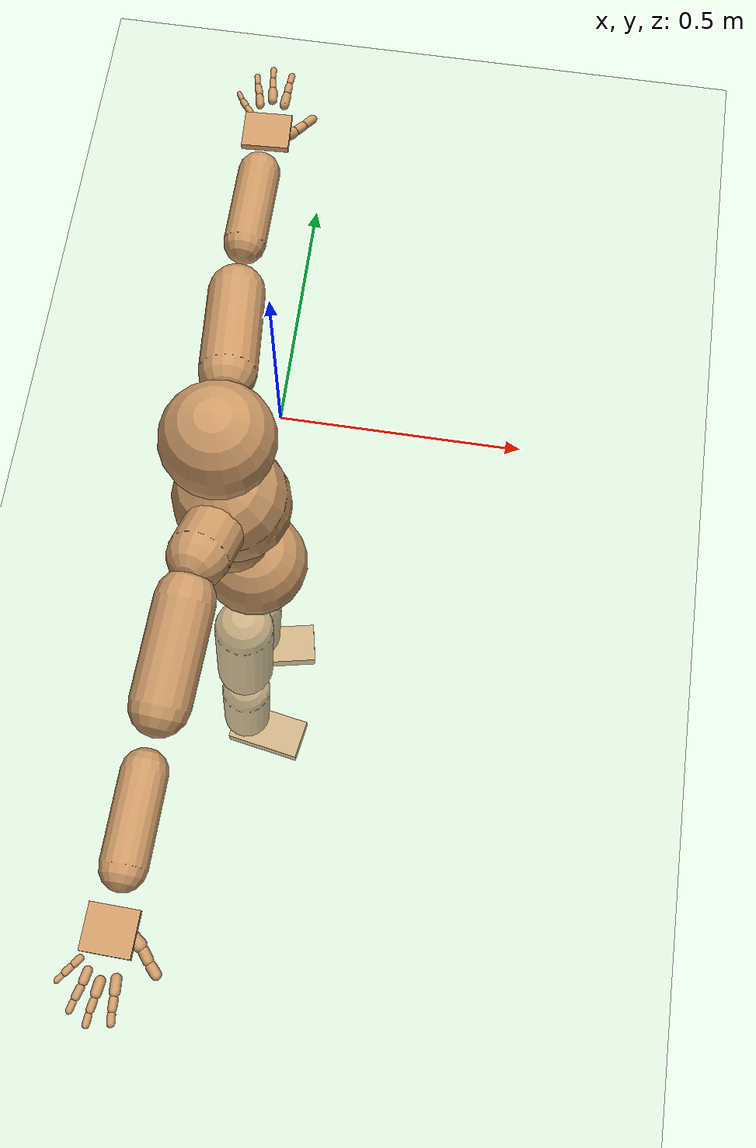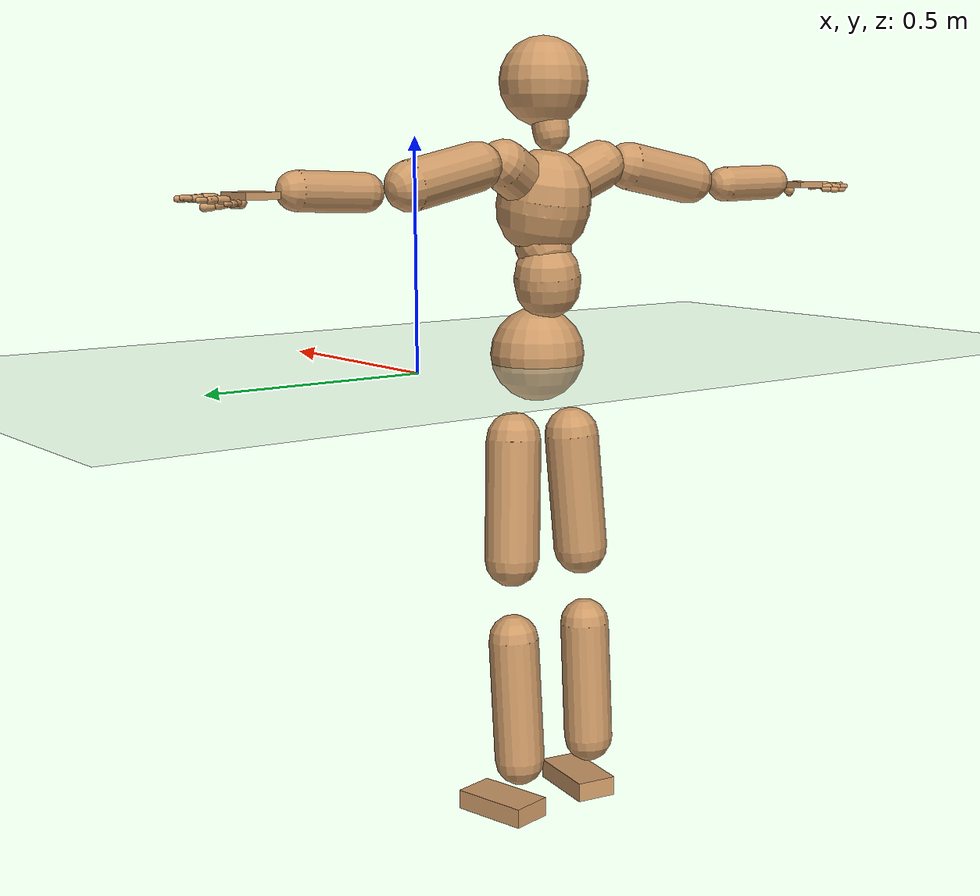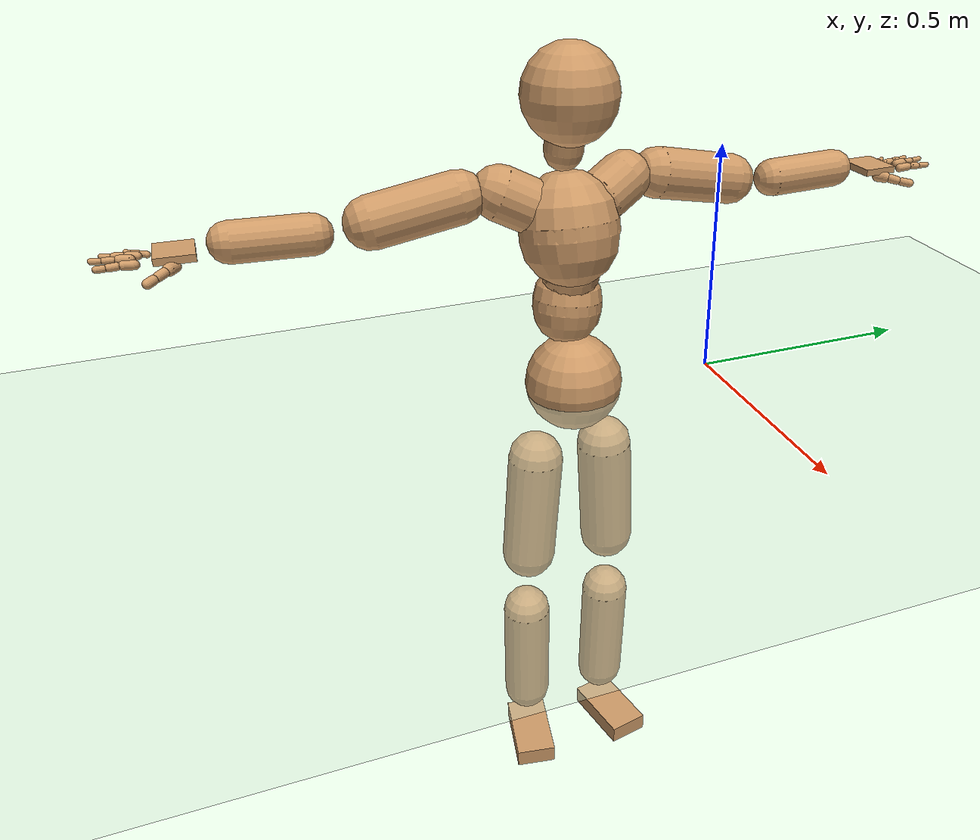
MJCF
<mujoco model="humanoid">
  <compiler coordinate="local" angle="radian"/>
  <default>
    <joint damping="0.0" armature="0.01" stiffness="0.0" limited="true"/>
    <geom conaffinity="1" condim="3" contype="7" margin="0.001" rgba="0.8 0.6 .4 1"/>
  </default>
  <asset>
    <texture type="skybox" builtin="gradient" rgb1=".4 .5 .6" rgb2="0 0 0" width="100" height="100"/>
    <texture builtin="flat" height="1278" mark="cross" markrgb="1 1 1" name="texgeom" random="0.01" rgb1="0.8 0.6 0.4" rgb2="0.8 0.6 0.4" type="cube" width="127"/>
    <texture builtin="checker" height="100" name="texplane" rgb1="0 0 0" rgb2="0.8 0.8 0.8" type="2d" width="100"/>
    <material name="MatPlane" reflectance="0.5" shininess="1" specular="1" texrepeat="60 60" texture="texplane"/>
    <material name="geom" texture="texgeom" texuniform="true"/>
  </asset>
  <worldbody>
    <light cutoff="100" diffuse="1 1 1" dir="-0 0 -1.3" directional="true" exponent="1" pos="0 0 1.3" specular=".1 .1 .1"/>
    <geom conaffinity="1" condim="3" name="floor" pos="0 0 0" rgba="0.8 0.9 0.8 1" size="100 100 .2" type="plane" material="MatPlane"/>
    <body name="Pelvis" pos="0.0007 -0.3256 0.0179">
      <freejoint name="Pelvis"/>
      <geom type="sphere" contype="1" conaffinity="1" density="500" size="0.1062" pos="0.0000 0.0000 0.0000" name="Pelvis"/>
      <body name="L_Hip" pos="-0.0147 0.078 -0.0942">
        <joint name="L_Hip_x" type="hinge" pos="0 0 0" axis="1 0 0" stiffness="800" damping="80" armature="0.02" range="-180.0000 180.0000"/>
        <joint name="L_Hip_y" type="hinge" pos="0 0 0" axis="0 1 0" stiffness="800" damping="80" armature="0.02" range="-180.0000 180.0000"/>
        <joint name="L_Hip_z" type="hinge" pos="0 0 0" axis="0 0 1" stiffness="800" damping="80" armature="0.02" range="-180.0000 180.0000"/>
        <geom type="capsule" contype="1" conaffinity="1" density="500" fromto="-0.0049 0.0055 -0.0903 -0.0198 0.0222 -0.3613" size="0.062" name="L_Hip"/>
        <body name="L_Knee" pos="-0.0247 0.0277 -0.4516">
          <joint name="L_Knee_x" type="hinge" pos="0 0 0" axis="1 0 0" stiffness="800" damping="80" armature="0.02" range="-180.0000 180.0000"/>
          <joint name="L_Knee_y" type="hinge" pos="0 0 0" axis="0 1 0" stiffness="800" damping="80" armature="0.02" range="-180.0000 180.0000"/>
          <joint name="L_Knee_z" type="hinge" pos="0 0 0" axis="0 0 1" stiffness="800" damping="80" armature="0.02" range="-180.0000 180.0000"/>
          <geom type="capsule" contype="1" conaffinity="1" density="500" fromto="-0.0058 -0.0010 -0.0941 -0.0230 -0.0040 -0.3763" size="0.0567" name="L_Knee"/>
          <body name="L_Ankle" pos="-0.0288 -0.005 -0.4704">
            <joint name="L_Ankle_x" type="hinge" pos="0 0 0" axis="1 0 0" stiffness="800" damping="80" armature="0.02" range="-180.0000 180.0000"/>
            <joint name="L_Ankle_y" type="hinge" pos="0 0 0" axis="0 1 0" stiffness="800" damping="80" armature="0.02" range="-180.0000 180.0000"/>
            <joint name="L_Ankle_z" type="hinge" pos="0 0 0" axis="0 0 1" stiffness="800" damping="80" armature="0.02" range="-180.0000 180.0000"/>
            <geom type="box" contype="1" conaffinity="1" density="500" pos="0.0581 0.0118 -0.0256" size="0.0908 0.0478 0.0221" quat="0.9950 0.0000 0.0000 0.0996" name="L_Ankle"/>
            <body name="L_Toe" pos="0.1162 0.0235 -0.0513">
              <joint name="L_Toe_x" type="hinge" pos="0 0 0" axis="1 0 0" stiffness="500" damping="50" armature="0.02" range="-180.0000 180.0000"/>
              <joint name="L_Toe_y" type="hinge" pos="0 0 0" axis="0 1 0" stiffness="500" damping="50" armature="0.02" range="-180.0000 180.0000"/>
              <joint name="L_Toe_z" type="hinge" pos="0 0 0" axis="0 0 1" stiffness="500" damping="50" armature="0.02" range="-180.0000 180.0000"/>
              <geom type="box" contype="1" conaffinity="1" density="500" pos="0.0000 0.0000 0.0244" size="0.0009 0.0023 0.001" quat="0.9944 0.0000 0.0000 0.1061" name="L_Toe"/>
            </body>
          </body>
        </body>
      </body>
      <body name="R_Hip" pos="-0.0163 -0.0779 -0.1006">
        <joint name="R_Hip_x" type="hinge" pos="0 0 0" axis="1 0 0" stiffness="800" damping="80" armature="0.02" range="-180.0000 180.0000"/>
        <joint name="R_Hip_y" type="hinge" pos="0 0 0" axis="0 1 0" stiffness="800" damping="80" armature="0.02" range="-180.0000 180.0000"/>
        <joint name="R_Hip_z" type="hinge" pos="0 0 0" axis="0 0 1" stiffness="800" damping="80" armature="0.02" range="-180.0000 180.0000"/>
        <geom type="capsule" contype="1" conaffinity="1" density="500" fromto="-0.0036 -0.0062 -0.0896 -0.0144 -0.0250 -0.3583" size="0.0619" name="R_Hip"/>
        <body name="R_Knee" pos="-0.018 -0.0312 -0.4479">
          <joint name="R_Knee_x" type="hinge" pos="0 0 0" axis="1 0 0" stiffness="800" damping="80" armature="0.02" range="-180.0000 180.0000"/>
          <joint name="R_Knee_y" type="hinge" pos="0 0 0" axis="0 1 0" stiffness="800" damping="80" armature="0.02" range="-180.0000 180.0000"/>
          <joint name="R_Knee_z" type="hinge" pos="0 0 0" axis="0 0 1" stiffness="800" damping="80" armature="0.02" range="-180.0000 180.0000"/>
          <geom type="capsule" contype="1" conaffinity="1" density="500" fromto="-0.0051 -0.0000 -0.0922 -0.0203 -0.0001 -0.3690" size="0.0566" name="R_Knee"/>
          <body name="R_Ankle" pos="-0.0254 -0.0001 -0.4612">
            <joint name="R_Ankle_x" type="hinge" pos="0 0 0" axis="1 0 0" stiffness="800" damping="80" armature="0.02" range="-180.0000 180.0000"/>
            <joint name="R_Ankle_y" type="hinge" pos="0 0 0" axis="0 1 0" stiffness="800" damping="80" armature="0.02" range="-180.0000 180.0000"/>
            <joint name="R_Ankle_z" type="hinge" pos="0 0 0" axis="0 0 1" stiffness="800" damping="80" armature="0.02" range="-180.0000 180.0000"/>
            <geom type="box" contype="1" conaffinity="1" density="500" pos="0.0550 -0.0095 -0.0273" size="0.0908 0.0478 0.0221" quat="0.9964 0.0000 0.0000 -0.0853" name="R_Ankle"/>
            <body name="R_Toe" pos="0.1101 -0.019 -0.0547">
              <joint name="R_Toe_x" type="hinge" pos="0 0 0" axis="1 0 0" stiffness="500" damping="50" armature="0.02" range="-180.0000 180.0000"/>
              <joint name="R_Toe_y" type="hinge" pos="0 0 0" axis="0 1 0" stiffness="500" damping="50" armature="0.02" range="-180.0000 180.0000"/>
              <joint name="R_Toe_z" type="hinge" pos="0 0 0" axis="0 0 1" stiffness="500" damping="50" armature="0.02" range="-180.0000 180.0000"/>
              <geom type="box" contype="1" conaffinity="1" density="500" pos="0.0000 0.0000 0.0261" size="0.0009 0.0023 0.001" quat="0.9972 0.0000 0.0000 -0.0752" name="R_Toe"/>
            </body>
          </body>
        </body>
      </body>
      <body name="Torso" pos="-0.0304 -0.0062 0.1124">
        <joint name="Torso_x" type="hinge" pos="0 0 0" axis="1 0 0" stiffness="1000" damping="100" armature="0.02" range="-180.0000 180.0000"/>
        <joint name="Torso_y" type="hinge" pos="0 0 0" axis="0 1 0" stiffness="1000" damping="100" armature="0.02" range="-180.0000 180.0000"/>
        <joint name="Torso_z" type="hinge" pos="0 0 0" axis="0 0 1" stiffness="1000" damping="100" armature="0.02" range="-180.0000 180.0000"/>
        <geom type="capsule" contype="1" conaffinity="1" density="500" fromto="-0.0069 0.0070 0.0677 -0.0046 0.0046 0.0452" size="0.0743" name="Torso"/>
        <body name="Spine" pos="-0.0116 0.0116 0.1129">
          <joint name="Spine_x" type="hinge" pos="0 0 0" axis="1 0 0" stiffness="1000" damping="100" armature="0.02" range="-180.0000 180.0000"/>
          <joint name="Spine_y" type="hinge" pos="0 0 0" axis="0 1 0" stiffness="1000" damping="100" armature="0.02" range="-180.0000 180.0000"/>
          <joint name="Spine_z" type="hinge" pos="0 0 0" axis="0 0 1" stiffness="1000" damping="100" armature="0.02" range="-180.0000 180.0000"/>
          <geom type="capsule" contype="1" conaffinity="1" density="500" fromto="0.0222 -0.0038 0.0260 0.0148 -0.0025 0.0173" size="0.0626" name="Spine"/>
          <body name="Chest" pos="0.0369 -0.0063 0.0433">
            <joint name="Chest_x" type="hinge" pos="0 0 0" axis="1 0 0" stiffness="1000" damping="100" armature="0.02" range="-180.0000 180.0000"/>
            <joint name="Chest_y" type="hinge" pos="0 0 0" axis="0 1 0" stiffness="1000" damping="100" armature="0.02" range="-180.0000 180.0000"/>
            <joint name="Chest_z" type="hinge" pos="0 0 0" axis="0 0 1" stiffness="1000" damping="100" armature="0.02" range="-180.0000 180.0000"/>
            <geom type="capsule" contype="1" conaffinity="1" density="500" fromto="-0.0181 -0.0016 0.0844 -0.0121 -0.0011 0.0563" size="0.1048" name="Chest"/>
            <body name="Neck" pos="-0.0431 -0.006 0.195">
              <joint name="Neck_x" type="hinge" pos="0 0 0" axis="1 0 0" stiffness="500" damping="50" armature="0.02" range="-180.0000 180.0000"/>
              <joint name="Neck_y" type="hinge" pos="0 0 0" axis="0 1 0" stiffness="500" damping="50" armature="0.02" range="-180.0000 180.0000"/>
              <joint name="Neck_z" type="hinge" pos="0 0 0" axis="0 0 1" stiffness="500" damping="50" armature="0.02" range="-180.0000 180.0000"/>
              <geom type="capsule" contype="1" conaffinity="1" density="500" fromto="0.0044 0.0018 0.0277 0.0177 0.0072 0.1108" size="0.0403" name="Neck"/>
              <body name="Head" pos="0.0222 0.009 0.1385">
                <joint name="Head_x" type="hinge" pos="0 0 0" axis="1 0 0" stiffness="500" damping="50" armature="0.02" range="-180.0000 180.0000"/>
                <joint name="Head_y" type="hinge" pos="0 0 0" axis="0 1 0" stiffness="500" damping="50" armature="0.02" range="-180.0000 180.0000"/>
                <joint name="Head_z" type="hinge" pos="0 0 0" axis="0 0 1" stiffness="500" damping="50" armature="0.02" range="-180.0000 180.0000"/>
                <geom type="sphere" contype="1" conaffinity="1" density="500" size="0.0983" pos="0.0000 0.0000 0.0000" name="Head"/>
              </body>
            </body>
            <body name="L_Thorax" pos="-0.0201 0.0552 0.1155">
              <joint name="L_Thorax_x" type="hinge" pos="0 0 0" axis="1 0 0" stiffness="500" damping="50" armature="0.02" range="-180.0000 180.0000"/>
              <joint name="L_Thorax_y" type="hinge" pos="0 0 0" axis="0 1 0" stiffness="500" damping="50" armature="0.02" range="-180.0000 180.0000"/>
              <joint name="L_Thorax_z" type="hinge" pos="0 0 0" axis="0 0 1" stiffness="500" damping="50" armature="0.02" range="-180.0000 180.0000"/>
              <geom type="capsule" contype="1" conaffinity="1" density="500" fromto="-0.0057 0.0186 0.0097 -0.0227 0.0743 0.0390" size="0.0551" name="L_Thorax"/>
              <body name="L_Shoulder" pos="-0.0284 0.0929 0.0487">
                <joint name="L_Shoulder_x" type="hinge" pos="0 0 0" axis="1 0 0" stiffness="500" damping="50" armature="0.02" range="-180.0000 180.0000"/>
                <joint name="L_Shoulder_y" type="hinge" pos="0 0 0" axis="0 1 0" stiffness="500" damping="50" armature="0.02" range="-180.0000 180.0000"/>
                <joint name="L_Shoulder_z" type="hinge" pos="0 0 0" axis="0 0 1" stiffness="500" damping="50" armature="0.02" range="-180.0000 180.0000"/>
                <geom type="capsule" contype="1" conaffinity="1" density="500" fromto="-0.0059 0.0609 -0.0127 -0.0238 0.2435 -0.0509" size="0.0533" name="L_Shoulder"/>
                <body name="L_Elbow" pos="-0.0297 0.3044 -0.0637">
                  <joint name="L_Elbow_x" type="hinge" pos="0 0 0" axis="1 0 0" stiffness="500" damping="50" armature="0.02" range="-720.0000 720.0000"/>
                  <joint name="L_Elbow_y" type="hinge" pos="0 0 0" axis="0 1 0" stiffness="500" damping="50" armature="0.02" range="-720.0000 720.0000"/>
                  <joint name="L_Elbow_z" type="hinge" pos="0 0 0" axis="0 0 1" stiffness="500" damping="50" armature="0.02" range="-720.0000 720.0000"/>
                  <geom type="capsule" contype="1" conaffinity="1" density="500" fromto="0.0008 0.0511 0.0019 0.0030 0.2044 0.0075" size="0.0404" name="L_Elbow"/>
                  <body name="L_Wrist" pos="0.0038 0.2555 0.0093">
                    <joint name="L_Wrist_x" type="hinge" pos="0 0 0" axis="1 0 0" stiffness="300" damping="30" armature="0.02" range="-180.0000 180.0000"/>
                    <joint name="L_Wrist_y" type="hinge" pos="0 0 0" axis="0 1 0" stiffness="300" damping="30" armature="0.02" range="-180.0000 180.0000"/>
                    <joint name="L_Wrist_z" type="hinge" pos="0 0 0" axis="0 0 1" stiffness="300" damping="30" armature="0.02" range="-180.0000 180.0000"/>
                    <geom type="box" contype="1" conaffinity="1" density="500" pos="-0.0023 0.0479 -0.0087" size="0.0381 0.0454 0.0072" quat="0.7241 0.0000 0.0000 -0.6897" name="L_Wrist"/>
                    <body name="L_Index1" pos="0.0199 0.1117 -0.015">
                      <joint name="L_Index1_x" type="hinge" pos="0 0 0" axis="1 0 0" stiffness="100" damping="10" armature="0.02" range="-180.0000 180.0000"/>
                      <joint name="L_Index1_y" type="hinge" pos="0 0 0" axis="0 1 0" stiffness="100" damping="10" armature="0.02" range="-180.0000 180.0000"/>
                      <joint name="L_Index1_z" type="hinge" pos="0 0 0" axis="0 0 1" stiffness="100" damping="10" armature="0.02" range="-180.0000 180.0000"/>
                      <geom type="capsule" contype="1" conaffinity="1" density="500" fromto="0.0005 0.0065 0.0006 0.0021 0.0259 0.0023" size="0.0089" name="L_Index1"/>
                      <body name="L_Index2" pos="0.0026 0.0324 0.0029">
                        <joint name="L_Index2_x" type="hinge" pos="0 0 0" axis="1 0 0" stiffness="100" damping="10" armature="0.02" range="-180.0000 180.0000"/>
                        <joint name="L_Index2_y" type="hinge" pos="0 0 0" axis="0 1 0" stiffness="100" damping="10" armature="0.02" range="-180.0000 180.0000"/>
                        <joint name="L_Index2_z" type="hinge" pos="0 0 0" axis="0 0 1" stiffness="100" damping="10" armature="0.02" range="-180.0000 180.0000"/>
                        <geom type="capsule" contype="1" conaffinity="1" density="500" fromto="0.0001 0.0046 -0.0003 0.0004 0.0183 -0.0011" size="0.0074" name="L_Index2"/>
                        <body name="L_Index3" pos="0.0005 0.0229 -0.0013">
                          <joint name="L_Index3_x" type="hinge" pos="0 0 0" axis="1 0 0" stiffness="100" damping="10" armature="0.02" range="-180.0000 180.0000"/>
                          <joint name="L_Index3_y" type="hinge" pos="0 0 0" axis="0 1 0" stiffness="100" damping="10" armature="0.02" range="-180.0000 180.0000"/>
                          <joint name="L_Index3_z" type="hinge" pos="0 0 0" axis="0 0 1" stiffness="100" damping="10" armature="0.02" range="-180.0000 180.0000"/>
                          <geom type="capsule" contype="1" conaffinity="1" density="500" fromto="0.0005 0.0050 0.0001 0.0020 0.0199 0.0005" size="0.0063" name="L_Index3"/>
                        </body>
                      </body>
                    </body>
                    <body name="L_Middle1" pos="-0.0031 0.1191 -0.0124">
                      <joint name="L_Middle1_x" type="hinge" pos="0 0 0" axis="1 0 0" stiffness="100" damping="10" armature="0.02" range="-180.0000 180.0000"/>
                      <joint name="L_Middle1_y" type="hinge" pos="0 0 0" axis="0 1 0" stiffness="100" damping="10" armature="0.02" range="-180.0000 180.0000"/>
                      <joint name="L_Middle1_z" type="hinge" pos="0 0 0" axis="0 0 1" stiffness="100" damping="10" armature="0.02" range="-180.0000 180.0000"/>
                      <geom type="capsule" contype="1" conaffinity="1" density="500" fromto="-0.0008 0.0062 0.0003 -0.0033 0.0246 0.0012" size="0.009" name="L_Middle1"/>
                      <body name="L_Middle2" pos="-0.0041 0.0308 0.0015">
                        <joint name="L_Middle2_x" type="hinge" pos="0 0 0" axis="1 0 0" stiffness="100" damping="10" armature="0.02" range="-180.0000 180.0000"/>
                        <joint name="L_Middle2_y" type="hinge" pos="0 0 0" axis="0 1 0" stiffness="100" damping="10" armature="0.02" range="-180.0000 180.0000"/>
                        <joint name="L_Middle2_z" type="hinge" pos="0 0 0" axis="0 0 1" stiffness="100" damping="10" armature="0.02" range="-180.0000 180.0000"/>
                        <geom type="capsule" contype="1" conaffinity="1" density="500" fromto="-0.0008 0.0048 -0.0001 -0.0031 0.0191 -0.0004" size="0.0067" name="L_Middle2"/>
                        <body name="L_Middle3" pos="-0.0039 0.0239 -0.0005">
                          <joint name="L_Middle3_x" type="hinge" pos="0 0 0" axis="1 0 0" stiffness="100" damping="10" armature="0.02" range="-180.0000 180.0000"/>
                          <joint name="L_Middle3_y" type="hinge" pos="0 0 0" axis="0 1 0" stiffness="100" damping="10" armature="0.02" range="-180.0000 180.0000"/>
                          <joint name="L_Middle3_z" type="hinge" pos="0 0 0" axis="0 0 1" stiffness="100" damping="10" armature="0.02" range="-180.0000 180.0000"/>
                          <geom type="capsule" contype="1" conaffinity="1" density="500" fromto="-0.0004 0.0052 0.0003 -0.0015 0.0207 0.0012" size="0.0058" name="L_Middle3"/>
                        </body>
                      </body>
                    </body>
                    <body name="L_Pinky1" pos="-0.0409 0.0931 -0.0207">
                      <joint name="L_Pinky1_x" type="hinge" pos="0 0 0" axis="1 0 0" stiffness="100" damping="10" armature="0.02" range="-180.0000 180.0000"/>
                      <joint name="L_Pinky1_y" type="hinge" pos="0 0 0" axis="0 1 0" stiffness="100" damping="10" armature="0.02" range="-180.0000 180.0000"/>
                      <joint name="L_Pinky1_z" type="hinge" pos="0 0 0" axis="0 0 1" stiffness="100" damping="10" armature="0.02" range="-180.0000 180.0000"/>
                      <geom type="capsule" contype="1" conaffinity="1" density="500" fromto="-0.0024 0.0030 -0.0001 -0.0097 0.0119 -0.0003" size="0.0064" name="L_Pinky1"/>
                      <body name="L_Pinky2" pos="-0.0122 0.0149 -0.0003">
                        <joint name="L_Pinky2_x" type="hinge" pos="0 0 0" axis="1 0 0" stiffness="100" damping="10" armature="0.02" range="-180.0000 180.0000"/>
                        <joint name="L_Pinky2_y" type="hinge" pos="0 0 0" axis="0 1 0" stiffness="100" damping="10" armature="0.02" range="-180.0000 180.0000"/>
                        <joint name="L_Pinky2_z" type="hinge" pos="0 0 0" axis="0 0 1" stiffness="100" damping="10" armature="0.02" range="-180.0000 180.0000"/>
                        <geom type="capsule" contype="1" conaffinity="1" density="500" fromto="-0.0023 0.0030 -0.0002 -0.0094 0.0121 -0.0007" size="0.0063" name="L_Pinky2"/>
                        <body name="L_Pinky3" pos="-0.0117 0.0151 -0.0009">
                          <joint name="L_Pinky3_x" type="hinge" pos="0 0 0" axis="1 0 0" stiffness="100" damping="10" armature="0.02" range="-180.0000 180.0000"/>
                          <joint name="L_Pinky3_y" type="hinge" pos="0 0 0" axis="0 1 0" stiffness="100" damping="10" armature="0.02" range="-180.0000 180.0000"/>
                          <joint name="L_Pinky3_z" type="hinge" pos="0 0 0" axis="0 0 1" stiffness="100" damping="10" armature="0.02" range="-180.0000 180.0000"/>
                          <geom type="capsule" contype="1" conaffinity="1" density="500" fromto="-0.0019 0.0034 0.0002 -0.0078 0.0137 0.0009" size="0.0049" name="L_Pinky3"/>
                        </body>
                      </body>
                    </body>
                    <body name="L_Ring1" pos="-0.0256 0.1067 -0.0155">
                      <joint name="L_Ring1_x" type="hinge" pos="0 0 0" axis="1 0 0" stiffness="100" damping="10" armature="0.02" range="-180.0000 180.0000"/>
                      <joint name="L_Ring1_y" type="hinge" pos="0 0 0" axis="0 1 0" stiffness="100" damping="10" armature="0.02" range="-180.0000 180.0000"/>
                      <joint name="L_Ring1_z" type="hinge" pos="0 0 0" axis="0 0 1" stiffness="100" damping="10" armature="0.02" range="-180.0000 180.0000"/>
                      <geom type="capsule" contype="1" conaffinity="1" density="500" fromto="-0.0011 0.0056 0.0003 -0.0045 0.0223 0.0013" size="0.0078" name="L_Ring1"/>
                      <body name="L_Ring2" pos="-0.0057 0.0279 0.0016">
                        <joint name="L_Ring2_x" type="hinge" pos="0 0 0" axis="1 0 0" stiffness="100" damping="10" armature="0.02" range="-180.0000 180.0000"/>
                        <joint name="L_Ring2_y" type="hinge" pos="0 0 0" axis="0 1 0" stiffness="100" damping="10" armature="0.02" range="-180.0000 180.0000"/>
                        <joint name="L_Ring2_z" type="hinge" pos="0 0 0" axis="0 0 1" stiffness="100" damping="10" armature="0.02" range="-180.0000 180.0000"/>
                        <geom type="capsule" contype="1" conaffinity="1" density="500" fromto="-0.0015 0.0046 -0.0002 -0.0059 0.0183 -0.0008" size="0.0072" name="L_Ring2"/>
                        <body name="L_Ring3" pos="-0.0073 0.0229 -0.001">
                          <joint name="L_Ring3_x" type="hinge" pos="0 0 0" axis="1 0 0" stiffness="100" damping="10" armature="0.02" range="-180.0000 180.0000"/>
                          <joint name="L_Ring3_y" type="hinge" pos="0 0 0" axis="0 1 0" stiffness="100" damping="10" armature="0.02" range="-180.0000 180.0000"/>
                          <joint name="L_Ring3_z" type="hinge" pos="0 0 0" axis="0 0 1" stiffness="100" damping="10" armature="0.02" range="-180.0000 180.0000"/>
                          <geom type="capsule" contype="1" conaffinity="1" density="500" fromto="-0.0011 0.0050 0.0002 -0.0043 0.0199 0.0008" size="0.0056" name="L_Ring3"/>
                        </body>
                      </body>
                    </body>
                    <body name="L_Thumb1" pos="0.0265 0.0485 -0.023">
                      <joint name="L_Thumb1_x" type="hinge" pos="0 0 0" axis="1 0 0" stiffness="100" damping="10" armature="0.02" range="-180.0000 180.0000"/>
                      <joint name="L_Thumb1_y" type="hinge" pos="0 0 0" axis="0 1 0" stiffness="100" damping="10" armature="0.02" range="-180.0000 180.0000"/>
                      <joint name="L_Thumb1_z" type="hinge" pos="0 0 0" axis="0 0 1" stiffness="100" damping="10" armature="0.02" range="-180.0000 180.0000"/>
                      <geom type="capsule" contype="1" conaffinity="1" density="500" fromto="0.0047 0.0036 0.0000 0.0190 0.0144 0.0002" size="0.0118" name="L_Thumb1"/>
                      <body name="L_Thumb2" pos="0.0237 0.018 0.0002">
                        <joint name="L_Thumb2_x" type="hinge" pos="0 0 0" axis="1 0 0" stiffness="100" damping="10" armature="0.02" range="-180.0000 180.0000"/>
                        <joint name="L_Thumb2_y" type="hinge" pos="0 0 0" axis="0 1 0" stiffness="100" damping="10" armature="0.02" range="-180.0000 180.0000"/>
                        <joint name="L_Thumb2_z" type="hinge" pos="0 0 0" axis="0 0 1" stiffness="100" damping="10" armature="0.02" range="-180.0000 180.0000"/>
                        <geom type="capsule" contype="1" conaffinity="1" density="500" fromto="0.0029 0.0042 -0.0012 0.0118 0.0168 -0.0047" size="0.0093" name="L_Thumb2"/>
                        <body name="L_Thumb3" pos="0.0147 0.021 -0.0059">
                          <joint name="L_Thumb3_x" type="hinge" pos="0 0 0" axis="1 0 0" stiffness="100" damping="10" armature="0.02" range="-180.0000 180.0000"/>
                          <joint name="L_Thumb3_y" type="hinge" pos="0 0 0" axis="0 1 0" stiffness="100" damping="10" armature="0.02" range="-180.0000 180.0000"/>
                          <joint name="L_Thumb3_z" type="hinge" pos="0 0 0" axis="0 0 1" stiffness="100" damping="10" armature="0.02" range="-180.0000 180.0000"/>
                          <geom type="capsule" contype="1" conaffinity="1" density="500" fromto="0.0033 0.0046 -0.0008 0.0134 0.0184 -0.0031" size="0.0088" name="L_Thumb3"/>
                        </body>
                      </body>
                    </body>
                  </body>
                </body>
              </body>
            </body>
            <body name="R_Thorax" pos="-0.0273 -0.0575 0.1114">
              <joint name="R_Thorax_x" type="hinge" pos="0 0 0" axis="1 0 0" stiffness="500" damping="50" armature="0.02" range="-180.0000 180.0000"/>
              <joint name="R_Thorax_y" type="hinge" pos="0 0 0" axis="0 1 0" stiffness="500" damping="50" armature="0.02" range="-180.0000 180.0000"/>
              <joint name="R_Thorax_z" type="hinge" pos="0 0 0" axis="0 0 1" stiffness="500" damping="50" armature="0.02" range="-180.0000 180.0000"/>
              <geom type="capsule" contype="1" conaffinity="1" density="500" fromto="-0.0041 -0.0202 0.0099 -0.0165 -0.0807 0.0398" size="0.0563" name="R_Thorax"/>
              <body name="R_Shoulder" pos="-0.0207 -0.1008 0.0497">
                <joint name="R_Shoulder_x" type="hinge" pos="0 0 0" axis="1 0 0" stiffness="500" damping="50" armature="0.02" range="-180.0000 180.0000"/>
                <joint name="R_Shoulder_y" type="hinge" pos="0 0 0" axis="0 1 0" stiffness="500" damping="50" armature="0.02" range="-180.0000 180.0000"/>
                <joint name="R_Shoulder_z" type="hinge" pos="0 0 0" axis="0 0 1" stiffness="500" damping="50" armature="0.02" range="-180.0000 180.0000"/>
                <geom type="capsule" contype="1" conaffinity="1" density="500" fromto="-0.0045 -0.0589 -0.0114 -0.0179 -0.2355 -0.0456" size="0.0536" name="R_Shoulder"/>
                <body name="R_Elbow" pos="-0.0224 -0.2944 -0.057">
                  <joint name="R_Elbow_x" type="hinge" pos="0 0 0" axis="1 0 0" stiffness="500" damping="50" armature="0.02" range="-720.0000 720.0000"/>
                  <joint name="R_Elbow_y" type="hinge" pos="0 0 0" axis="0 1 0" stiffness="500" damping="50" armature="0.02" range="-720.0000 720.0000"/>
                  <joint name="R_Elbow_z" type="hinge" pos="0 0 0" axis="0 0 1" stiffness="500" damping="50" armature="0.02" range="-720.0000 720.0000"/>
                  <geom type="capsule" contype="1" conaffinity="1" density="500" fromto="-0.0011 -0.0513 0.0010 -0.0045 -0.2050 0.0041" size="0.0406" name="R_Elbow"/>
                  <body name="R_Wrist" pos="-0.0056 -0.2563 0.0051">
                    <joint name="R_Wrist_x" type="hinge" pos="0 0 0" axis="1 0 0" stiffness="300" damping="30" armature="0.02" range="-180.0000 180.0000"/>
                    <joint name="R_Wrist_y" type="hinge" pos="0 0 0" axis="0 1 0" stiffness="300" damping="30" armature="0.02" range="-180.0000 180.0000"/>
                    <joint name="R_Wrist_z" type="hinge" pos="0 0 0" axis="0 0 1" stiffness="300" damping="30" armature="0.02" range="-180.0000 180.0000"/>
                    <geom type="box" contype="1" conaffinity="1" density="500" pos="-0.0015 -0.0471 -0.0083" size="0.0381 0.0421 0.0074" quat="0.7185 0.0000 0.0000 0.6955" name="R_Wrist"/>
                    <body name="R_Index1" pos="0.0214 -0.1102 -0.0144">
                      <joint name="R_Index1_x" type="hinge" pos="0 0 0" axis="1 0 0" stiffness="100" damping="10" armature="0.02" range="-180.0000 180.0000"/>
                      <joint name="R_Index1_y" type="hinge" pos="0 0 0" axis="0 1 0" stiffness="100" damping="10" armature="0.02" range="-180.0000 180.0000"/>
                      <joint name="R_Index1_z" type="hinge" pos="0 0 0" axis="0 0 1" stiffness="100" damping="10" armature="0.02" range="-180.0000 180.0000"/>
                      <geom type="capsule" contype="1" conaffinity="1" density="500" fromto="0.0005 -0.0065 0.0006 0.0021 -0.0259 0.0023" size="0.0089" name="R_Index1"/>
                      <body name="R_Index2" pos="0.0026 -0.0324 0.0029">
                        <joint name="R_Index2_x" type="hinge" pos="0 0 0" axis="1 0 0" stiffness="100" damping="10" armature="0.02" range="-180.0000 180.0000"/>
                        <joint name="R_Index2_y" type="hinge" pos="0 0 0" axis="0 1 0" stiffness="100" damping="10" armature="0.02" range="-180.0000 180.0000"/>
                        <joint name="R_Index2_z" type="hinge" pos="0 0 0" axis="0 0 1" stiffness="100" damping="10" armature="0.02" range="-180.0000 180.0000"/>
                        <geom type="capsule" contype="1" conaffinity="1" density="500" fromto="0.0001 -0.0046 -0.0003 0.0004 -0.0183 -0.0011" size="0.0074" name="R_Index2"/>
                        <body name="R_Index3" pos="0.0005 -0.0229 -0.0013">
                          <joint name="R_Index3_x" type="hinge" pos="0 0 0" axis="1 0 0" stiffness="100" damping="10" armature="0.02" range="-180.0000 180.0000"/>
                          <joint name="R_Index3_y" type="hinge" pos="0 0 0" axis="0 1 0" stiffness="100" damping="10" armature="0.02" range="-180.0000 180.0000"/>
                          <joint name="R_Index3_z" type="hinge" pos="0 0 0" axis="0 0 1" stiffness="100" damping="10" armature="0.02" range="-180.0000 180.0000"/>
                          <geom type="capsule" contype="1" conaffinity="1" density="500" fromto="0.0005 -0.0042 0.0001 0.0020 -0.0167 0.0005" size="0.0066" name="R_Index3"/>
                        </body>
                      </body>
                    </body>
                    <body name="R_Middle1" pos="-0.0015 -0.1175 -0.0117">
                      <joint name="R_Middle1_x" type="hinge" pos="0 0 0" axis="1 0 0" stiffness="100" damping="10" armature="0.02" range="-180.0000 180.0000"/>
                      <joint name="R_Middle1_y" type="hinge" pos="0 0 0" axis="0 1 0" stiffness="100" damping="10" armature="0.02" range="-180.0000 180.0000"/>
                      <joint name="R_Middle1_z" type="hinge" pos="0 0 0" axis="0 0 1" stiffness="100" damping="10" armature="0.02" range="-180.0000 180.0000"/>
                      <geom type="capsule" contype="1" conaffinity="1" density="500" fromto="-0.0008 -0.0062 0.0003 -0.0033 -0.0246 0.0012" size="0.009" name="R_Middle1"/>
                      <body name="R_Middle2" pos="-0.0041 -0.0308 0.0015">
                        <joint name="R_Middle2_x" type="hinge" pos="0 0 0" axis="1 0 0" stiffness="100" damping="10" armature="0.02" range="-180.0000 180.0000"/>
                        <joint name="R_Middle2_y" type="hinge" pos="0 0 0" axis="0 1 0" stiffness="100" damping="10" armature="0.02" range="-180.0000 180.0000"/>
                        <joint name="R_Middle2_z" type="hinge" pos="0 0 0" axis="0 0 1" stiffness="100" damping="10" armature="0.02" range="-180.0000 180.0000"/>
                        <geom type="capsule" contype="1" conaffinity="1" density="500" fromto="-0.0008 -0.0048 -0.0001 -0.0031 -0.0191 -0.0004" size="0.0067" name="R_Middle2"/>
                        <body name="R_Middle3" pos="-0.0039 -0.0239 -0.0005">
                          <joint name="R_Middle3_x" type="hinge" pos="0 0 0" axis="1 0 0" stiffness="100" damping="10" armature="0.02" range="-180.0000 180.0000"/>
                          <joint name="R_Middle3_y" type="hinge" pos="0 0 0" axis="0 1 0" stiffness="100" damping="10" armature="0.02" range="-180.0000 180.0000"/>
                          <joint name="R_Middle3_z" type="hinge" pos="0 0 0" axis="0 0 1" stiffness="100" damping="10" armature="0.02" range="-180.0000 180.0000"/>
                          <geom type="capsule" contype="1" conaffinity="1" density="500" fromto="-0.0004 -0.0044 0.0003 -0.0015 -0.0175 0.0012" size="0.0061" name="R_Middle3"/>
                        </body>
                      </body>
                    </body>
                    <body name="R_Pinky1" pos="-0.0393 -0.0915 -0.02">
                      <joint name="R_Pinky1_x" type="hinge" pos="0 0 0" axis="1 0 0" stiffness="100" damping="10" armature="0.02" range="-180.0000 180.0000"/>
                      <joint name="R_Pinky1_y" type="hinge" pos="0 0 0" axis="0 1 0" stiffness="100" damping="10" armature="0.02" range="-180.0000 180.0000"/>
                      <joint name="R_Pinky1_z" type="hinge" pos="0 0 0" axis="0 0 1" stiffness="100" damping="10" armature="0.02" range="-180.0000 180.0000"/>
                      <geom type="capsule" contype="1" conaffinity="1" density="500" fromto="-0.0024 -0.0030 -0.0001 -0.0097 -0.0119 -0.0003" size="0.0064" name="R_Pinky1"/>
                      <body name="R_Pinky2" pos="-0.0122 -0.0149 -0.0003">
                        <joint name="R_Pinky2_x" type="hinge" pos="0 0 0" axis="1 0 0" stiffness="100" damping="10" armature="0.02" range="-180.0000 180.0000"/>
                        <joint name="R_Pinky2_y" type="hinge" pos="0 0 0" axis="0 1 0" stiffness="100" damping="10" armature="0.02" range="-180.0000 180.0000"/>
                        <joint name="R_Pinky2_z" type="hinge" pos="0 0 0" axis="0 0 1" stiffness="100" damping="10" armature="0.02" range="-180.0000 180.0000"/>
                        <geom type="capsule" contype="1" conaffinity="1" density="500" fromto="-0.0023 -0.0030 -0.0002 -0.0094 -0.0121 -0.0007" size="0.0063" name="R_Pinky2"/>
                        <body name="R_Pinky3" pos="-0.0117 -0.0151 -0.0009">
                          <joint name="R_Pinky3_x" type="hinge" pos="0 0 0" axis="1 0 0" stiffness="100" damping="10" armature="0.02" range="-180.0000 180.0000"/>
                          <joint name="R_Pinky3_y" type="hinge" pos="0 0 0" axis="0 1 0" stiffness="100" damping="10" armature="0.02" range="-180.0000 180.0000"/>
                          <joint name="R_Pinky3_z" type="hinge" pos="0 0 0" axis="0 0 1" stiffness="100" damping="10" armature="0.02" range="-180.0000 180.0000"/>
                          <geom type="capsule" contype="1" conaffinity="1" density="500" fromto="-0.0019 -0.0026 0.0002 -0.0078 -0.0105 0.0009" size="0.0051" name="R_Pinky3"/>
                        </body>
                      </body>
                    </body>
                    <body name="R_Ring1" pos="-0.024 -0.1052 -0.0148">
                      <joint name="R_Ring1_x" type="hinge" pos="0 0 0" axis="1 0 0" stiffness="100" damping="10" armature="0.02" range="-180.0000 180.0000"/>
                      <joint name="R_Ring1_y" type="hinge" pos="0 0 0" axis="0 1 0" stiffness="100" damping="10" armature="0.02" range="-180.0000 180.0000"/>
                      <joint name="R_Ring1_z" type="hinge" pos="0 0 0" axis="0 0 1" stiffness="100" damping="10" armature="0.02" range="-180.0000 180.0000"/>
                      <geom type="capsule" contype="1" conaffinity="1" density="500" fromto="-0.0011 -0.0056 0.0003 -0.0045 -0.0223 0.0013" size="0.0078" name="R_Ring1"/>
                      <body name="R_Ring2" pos="-0.0057 -0.0279 0.0016">
                        <joint name="R_Ring2_x" type="hinge" pos="0 0 0" axis="1 0 0" stiffness="100" damping="10" armature="0.02" range="-180.0000 180.0000"/>
                        <joint name="R_Ring2_y" type="hinge" pos="0 0 0" axis="0 1 0" stiffness="100" damping="10" armature="0.02" range="-180.0000 180.0000"/>
                        <joint name="R_Ring2_z" type="hinge" pos="0 0 0" axis="0 0 1" stiffness="100" damping="10" armature="0.02" range="-180.0000 180.0000"/>
                        <geom type="capsule" contype="1" conaffinity="1" density="500" fromto="-0.0015 -0.0046 -0.0002 -0.0059 -0.0183 -0.0008" size="0.0072" name="R_Ring2"/>
                        <body name="R_Ring3" pos="-0.0073 -0.0229 -0.001">
                          <joint name="R_Ring3_x" type="hinge" pos="0 0 0" axis="1 0 0" stiffness="100" damping="10" armature="0.02" range="-180.0000 180.0000"/>
                          <joint name="R_Ring3_y" type="hinge" pos="0 0 0" axis="0 1 0" stiffness="100" damping="10" armature="0.02" range="-180.0000 180.0000"/>
                          <joint name="R_Ring3_z" type="hinge" pos="0 0 0" axis="0 0 1" stiffness="100" damping="10" armature="0.02" range="-180.0000 180.0000"/>
                          <geom type="capsule" contype="1" conaffinity="1" density="500" fromto="-0.0011 -0.0042 0.0002 -0.0043 -0.0167 0.0008" size="0.0059" name="R_Ring3"/>
                        </body>
                      </body>
                    </body>
                    <body name="R_Thumb1" pos="0.0281 -0.0469 -0.0223">
                      <joint name="R_Thumb1_x" type="hinge" pos="0 0 0" axis="1 0 0" stiffness="100" damping="10" armature="0.02" range="-180.0000 180.0000"/>
                      <joint name="R_Thumb1_y" type="hinge" pos="0 0 0" axis="0 1 0" stiffness="100" damping="10" armature="0.02" range="-180.0000 180.0000"/>
                      <joint name="R_Thumb1_z" type="hinge" pos="0 0 0" axis="0 0 1" stiffness="100" damping="10" armature="0.02" range="-180.0000 180.0000"/>
                      <geom type="capsule" contype="1" conaffinity="1" density="500" fromto="0.0047 -0.0036 0.0000 0.0190 -0.0144 0.0002" size="0.0118" name="R_Thumb1"/>
                      <body name="R_Thumb2" pos="0.0237 -0.018 0.0002">
                        <joint name="R_Thumb2_x" type="hinge" pos="0 0 0" axis="1 0 0" stiffness="100" damping="10" armature="0.02" range="-180.0000 180.0000"/>
                        <joint name="R_Thumb2_y" type="hinge" pos="0 0 0" axis="0 1 0" stiffness="100" damping="10" armature="0.02" range="-180.0000 180.0000"/>
                        <joint name="R_Thumb2_z" type="hinge" pos="0 0 0" axis="0 0 1" stiffness="100" damping="10" armature="0.02" range="-180.0000 180.0000"/>
                        <geom type="capsule" contype="1" conaffinity="1" density="500" fromto="0.0029 -0.0042 -0.0012 0.0118 -0.0168 -0.0047" size="0.0093" name="R_Thumb2"/>
                        <body name="R_Thumb3" pos="0.0147 -0.021 -0.0059">
                          <joint name="R_Thumb3_x" type="hinge" pos="0 0 0" axis="1 0 0" stiffness="100" damping="10" armature="0.02" range="-180.0000 180.0000"/>
                          <joint name="R_Thumb3_y" type="hinge" pos="0 0 0" axis="0 1 0" stiffness="100" damping="10" armature="0.02" range="-180.0000 180.0000"/>
                          <joint name="R_Thumb3_z" type="hinge" pos="0 0 0" axis="0 0 1" stiffness="100" damping="10" armature="0.02" range="-180.0000 180.0000"/>
                          <geom type="capsule" contype="1" conaffinity="1" density="500" fromto="0.0033 -0.0038 -0.0008 0.0134 -0.0152 -0.0031" size="0.0091" name="R_Thumb3"/>
                        </body>
                      </body>
                    </body>
                  </body>
                </body>
              </body>
            </body>
          </body>
        </body>
      </body>
    </body>
  </worldbody>
  <actuator>
    <motor name="L_Hip_x" joint="L_Hip_x" gear="500"/>
    <motor name="L_Hip_y" joint="L_Hip_y" gear="500"/>
    <motor name="L_Hip_z" joint="L_Hip_z" gear="500"/>
    <motor name="L_Knee_x" joint="L_Knee_x" gear="500"/>
    <motor name="L_Knee_y" joint="L_Knee_y" gear="500"/>
    <motor name="L_Knee_z" joint="L_Knee_z" gear="500"/>
    <motor name="L_Ankle_x" joint="L_Ankle_x" gear="500"/>
    <motor name="L_Ankle_y" joint="L_Ankle_y" gear="500"/>
    <motor name="L_Ankle_z" joint="L_Ankle_z" gear="500"/>
    <motor name="L_Toe_x" joint="L_Toe_x" gear="500"/>
    <motor name="L_Toe_y" joint="L_Toe_y" gear="500"/>
    <motor name="L_Toe_z" joint="L_Toe_z" gear="500"/>
    <motor name="R_Hip_x" joint="R_Hip_x" gear="500"/>
    <motor name="R_Hip_y" joint="R_Hip_y" gear="500"/>
    <motor name="R_Hip_z" joint="R_Hip_z" gear="500"/>
    <motor name="R_Knee_x" joint="R_Knee_x" gear="500"/>
    <motor name="R_Knee_y" joint="R_Knee_y" gear="500"/>
    <motor name="R_Knee_z" joint="R_Knee_z" gear="500"/>
    <motor name="R_Ankle_x" joint="R_Ankle_x" gear="500"/>
    <motor name="R_Ankle_y" joint="R_Ankle_y" gear="500"/>
    <motor name="R_Ankle_z" joint="R_Ankle_z" gear="500"/>
    <motor name="R_Toe_x" joint="R_Toe_x" gear="500"/>
    <motor name="R_Toe_y" joint="R_Toe_y" gear="500"/>
    <motor name="R_Toe_z" joint="R_Toe_z" gear="500"/>
    <motor name="Torso_x" joint="Torso_x" gear="500"/>
    <motor name="Torso_y" joint="Torso_y" gear="500"/>
    <motor name="Torso_z" joint="Torso_z" gear="500"/>
    <motor name="Spine_x" joint="Spine_x" gear="500"/>
    <motor name="Spine_y" joint="Spine_y" gear="500"/>
    <motor name="Spine_z" joint="Spine_z" gear="500"/>
    <motor name="Chest_x" joint="Chest_x" gear="500"/>
    <motor name="Chest_y" joint="Chest_y" gear="500"/>
    <motor name="Chest_z" joint="Chest_z" gear="500"/>
    <motor name="Neck_x" joint="Neck_x" gear="500"/>
    <motor name="Neck_y" joint="Neck_y" gear="500"/>
    <motor name="Neck_z" joint="Neck_z" gear="500"/>
    <motor name="Head_x" joint="Head_x" gear="500"/>
    <motor name="Head_y" joint="Head_y" gear="500"/>
    <motor name="Head_z" joint="Head_z" gear="500"/>
    <motor name="L_Thorax_x" joint="L_Thorax_x" gear="500"/>
    <motor name="L_Thorax_y" joint="L_Thorax_y" gear="500"/>
    <motor name="L_Thorax_z" joint="L_Thorax_z" gear="500"/>
    <motor name="L_Shoulder_x" joint="L_Shoulder_x" gear="500"/>
    <motor name="L_Shoulder_y" joint="L_Shoulder_y" gear="500"/>
    <motor name="L_Shoulder_z" joint="L_Shoulder_z" gear="500"/>
    <motor name="L_Elbow_x" joint="L_Elbow_x" gear="500"/>
    <motor name="L_Elbow_y" joint="L_Elbow_y" gear="500"/>
    <motor name="L_Elbow_z" joint="L_Elbow_z" gear="500"/>
    <motor name="L_Wrist_x" joint="L_Wrist_x" gear="500"/>
    <motor name="L_Wrist_y" joint="L_Wrist_y" gear="500"/>
    <motor name="L_Wrist_z" joint="L_Wrist_z" gear="500"/>
    <motor name="L_Index1_x" joint="L_Index1_x" gear="500"/>
    <motor name="L_Index1_y" joint="L_Index1_y" gear="500"/>
    <motor name="L_Index1_z" joint="L_Index1_z" gear="500"/>
    <motor name="L_Index2_x" joint="L_Index2_x" gear="500"/>
    <motor name="L_Index2_y" joint="L_Index2_y" gear="500"/>
    <motor name="L_Index2_z" joint="L_Index2_z" gear="500"/>
    <motor name="L_Index3_x" joint="L_Index3_x" gear="500"/>
    <motor name="L_Index3_y" joint="L_Index3_y" gear="500"/>
    <motor name="L_Index3_z" joint="L_Index3_z" gear="500"/>
    <motor name="L_Middle1_x" joint="L_Middle1_x" gear="500"/>
    <motor name="L_Middle1_y" joint="L_Middle1_y" gear="500"/>
    <motor name="L_Middle1_z" joint="L_Middle1_z" gear="500"/>
    <motor name="L_Middle2_x" joint="L_Middle2_x" gear="500"/>
    <motor name="L_Middle2_y" joint="L_Middle2_y" gear="500"/>
    <motor name="L_Middle2_z" joint="L_Middle2_z" gear="500"/>
    <motor name="L_Middle3_x" joint="L_Middle3_x" gear="500"/>
    <motor name="L_Middle3_y" joint="L_Middle3_y" gear="500"/>
    <motor name="L_Middle3_z" joint="L_Middle3_z" gear="500"/>
    <motor name="L_Pinky1_x" joint="L_Pinky1_x" gear="500"/>
    <motor name="L_Pinky1_y" joint="L_Pinky1_y" gear="500"/>
    <motor name="L_Pinky1_z" joint="L_Pinky1_z" gear="500"/>
    <motor name="L_Pinky2_x" joint="L_Pinky2_x" gear="500"/>
    <motor name="L_Pinky2_y" joint="L_Pinky2_y" gear="500"/>
    <motor name="L_Pinky2_z" joint="L_Pinky2_z" gear="500"/>
    <motor name="L_Pinky3_x" joint="L_Pinky3_x" gear="500"/>
    <motor name="L_Pinky3_y" joint="L_Pinky3_y" gear="500"/>
    <motor name="L_Pinky3_z" joint="L_Pinky3_z" gear="500"/>
    <motor name="L_Ring1_x" joint="L_Ring1_x" gear="500"/>
    <motor name="L_Ring1_y" joint="L_Ring1_y" gear="500"/>
    <motor name="L_Ring1_z" joint="L_Ring1_z" gear="500"/>
    <motor name="L_Ring2_x" joint="L_Ring2_x" gear="500"/>
    <motor name="L_Ring2_y" joint="L_Ring2_y" gear="500"/>
    <motor name="L_Ring2_z" joint="L_Ring2_z" gear="500"/>
    <motor name="L_Ring3_x" joint="L_Ring3_x" gear="500"/>
    <motor name="L_Ring3_y" joint="L_Ring3_y" gear="500"/>
    <motor name="L_Ring3_z" joint="L_Ring3_z" gear="500"/>
    <motor name="L_Thumb1_x" joint="L_Thumb1_x" gear="500"/>
    <motor name="L_Thumb1_y" joint="L_Thumb1_y" gear="500"/>
    <motor name="L_Thumb1_z" joint="L_Thumb1_z" gear="500"/>
    <motor name="L_Thumb2_x" joint="L_Thumb2_x" gear="500"/>
    <motor name="L_Thumb2_y" joint="L_Thumb2_y" gear="500"/>
    <motor name="L_Thumb2_z" joint="L_Thumb2_z" gear="500"/>
    <motor name="L_Thumb3_x" joint="L_Thumb3_x" gear="500"/>
    <motor name="L_Thumb3_y" joint="L_Thumb3_y" gear="500"/>
    <motor name="L_Thumb3_z" joint="L_Thumb3_z" gear="500"/>
    <motor name="R_Thorax_x" joint="R_Thorax_x" gear="500"/>
    <motor name="R_Thorax_y" joint="R_Thorax_y" gear="500"/>
    <motor name="R_Thorax_z" joint="R_Thorax_z" gear="500"/>
    <motor name="R_Shoulder_x" joint="R_Shoulder_x" gear="500"/>
    <motor name="R_Shoulder_y" joint="R_Shoulder_y" gear="500"/>
    <motor name="R_Shoulder_z" joint="R_Shoulder_z" gear="500"/>
    <motor name="R_Elbow_x" joint="R_Elbow_x" gear="500"/>
    <motor name="R_Elbow_y" joint="R_Elbow_y" gear="500"/>
    <motor name="R_Elbow_z" joint="R_Elbow_z" gear="500"/>
    <motor name="R_Wrist_x" joint="R_Wrist_x" gear="500"/>
    <motor name="R_Wrist_y" joint="R_Wrist_y" gear="500"/>
    <motor name="R_Wrist_z" joint="R_Wrist_z" gear="500"/>
    <motor name="R_Index1_x" joint="R_Index1_x" gear="500"/>
    <motor name="R_Index1_y" joint="R_Index1_y" gear="500"/>
    <motor name="R_Index1_z" joint="R_Index1_z" gear="500"/>
    <motor name="R_Index2_x" joint="R_Index2_x" gear="500"/>
    <motor name="R_Index2_y" joint="R_Index2_y" gear="500"/>
    <motor name="R_Index2_z" joint="R_Index2_z" gear="500"/>
    <motor name="R_Index3_x" joint="R_Index3_x" gear="500"/>
    <motor name="R_Index3_y" joint="R_Index3_y" gear="500"/>
    <motor name="R_Index3_z" joint="R_Index3_z" gear="500"/>
    <motor name="R_Middle1_x" joint="R_Middle1_x" gear="500"/>
    <motor name="R_Middle1_y" joint="R_Middle1_y" gear="500"/>
    <motor name="R_Middle1_z" joint="R_Middle1_z" gear="500"/>
    <motor name="R_Middle2_x" joint="R_Middle2_x" gear="500"/>
    <motor name="R_Middle2_y" joint="R_Middle2_y" gear="500"/>
    <motor name="R_Middle2_z" joint="R_Middle2_z" gear="500"/>
    <motor name="R_Middle3_x" joint="R_Middle3_x" gear="500"/>
    <motor name="R_Middle3_y" joint="R_Middle3_y" gear="500"/>
    <motor name="R_Middle3_z" joint="R_Middle3_z" gear="500"/>
    <motor name="R_Pinky1_x" joint="R_Pinky1_x" gear="500"/>
    <motor name="R_Pinky1_y" joint="R_Pinky1_y" gear="500"/>
    <motor name="R_Pinky1_z" joint="R_Pinky1_z" gear="500"/>
    <motor name="R_Pinky2_x" joint="R_Pinky2_x" gear="500"/>
    <motor name="R_Pinky2_y" joint="R_Pinky2_y" gear="500"/>
    <motor name="R_Pinky2_z" joint="R_Pinky2_z" gear="500"/>
    <motor name="R_Pinky3_x" joint="R_Pinky3_x" gear="500"/>
    <motor name="R_Pinky3_y" joint="R_Pinky3_y" gear="500"/>
    <motor name="R_Pinky3_z" joint="R_Pinky3_z" gear="500"/>
    <motor name="R_Ring1_x" joint="R_Ring1_x" gear="500"/>
    <motor name="R_Ring1_y" joint="R_Ring1_y" gear="500"/>
    <motor name="R_Ring1_z" joint="R_Ring1_z" gear="500"/>
    <motor name="R_Ring2_x" joint="R_Ring2_x" gear="500"/>
    <motor name="R_Ring2_y" joint="R_Ring2_y" gear="500"/>
    <motor name="R_Ring2_z" joint="R_Ring2_z" gear="500"/>
    <motor name="R_Ring3_x" joint="R_Ring3_x" gear="500"/>
    <motor name="R_Ring3_y" joint="R_Ring3_y" gear="500"/>
    <motor name="R_Ring3_z" joint="R_Ring3_z" gear="500"/>
    <motor name="R_Thumb1_x" joint="R_Thumb1_x" gear="500"/>
    <motor name="R_Thumb1_y" joint="R_Thumb1_y" gear="500"/>
    <motor name="R_Thumb1_z" joint="R_Thumb1_z" gear="500"/>
    <motor name="R_Thumb2_x" joint="R_Thumb2_x" gear="500"/>
    <motor name="R_Thumb2_y" joint="R_Thumb2_y" gear="500"/>
    <motor name="R_Thumb2_z" joint="R_Thumb2_z" gear="500"/>
    <motor name="R_Thumb3_x" joint="R_Thumb3_x" gear="500"/>
    <motor name="R_Thumb3_y" joint="R_Thumb3_y" gear="500"/>
    <motor name="R_Thumb3_z" joint="R_Thumb3_z" gear="500"/>
  </actuator>
  <contact>
    <exclude body1="Torso" body2="Chest"/>
    <exclude body1="Head" body2="Chest"/>
    <exclude body1="R_Knee" body2="R_Toe"/>
    <exclude body1="R_Knee" body2="L_Ankle"/>
    <exclude body1="R_Knee" body2="L_Toe"/>
    <exclude body1="L_Knee" body2="L_Toe"/>
    <exclude body1="L_Knee" body2="R_Ankle"/>
    <exclude body1="L_Knee" body2="R_Toe"/>
    <exclude body1="L_Shoulder" body2="Chest"/>
    <exclude body1="R_Shoulder" body2="Chest"/>
  </contact>
  <sensor/>
  <size njmax="700" nconmax="700"/>
</mujoco>
